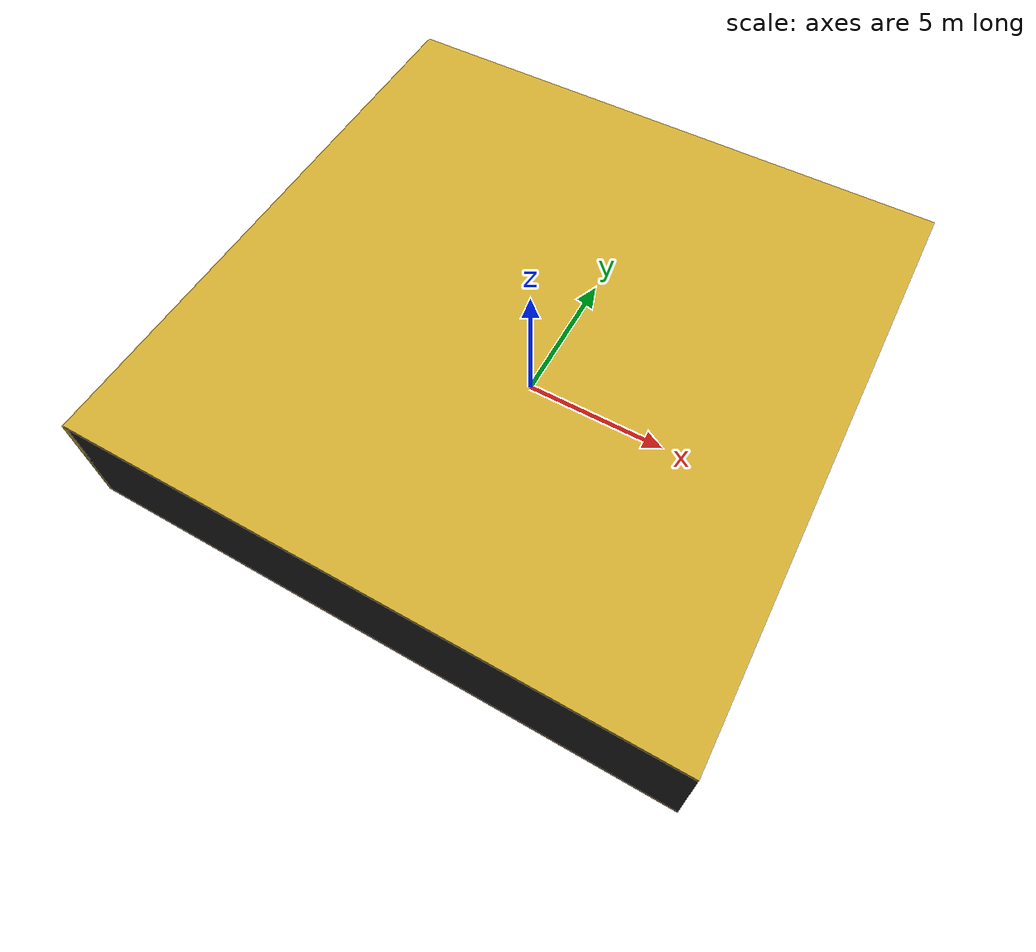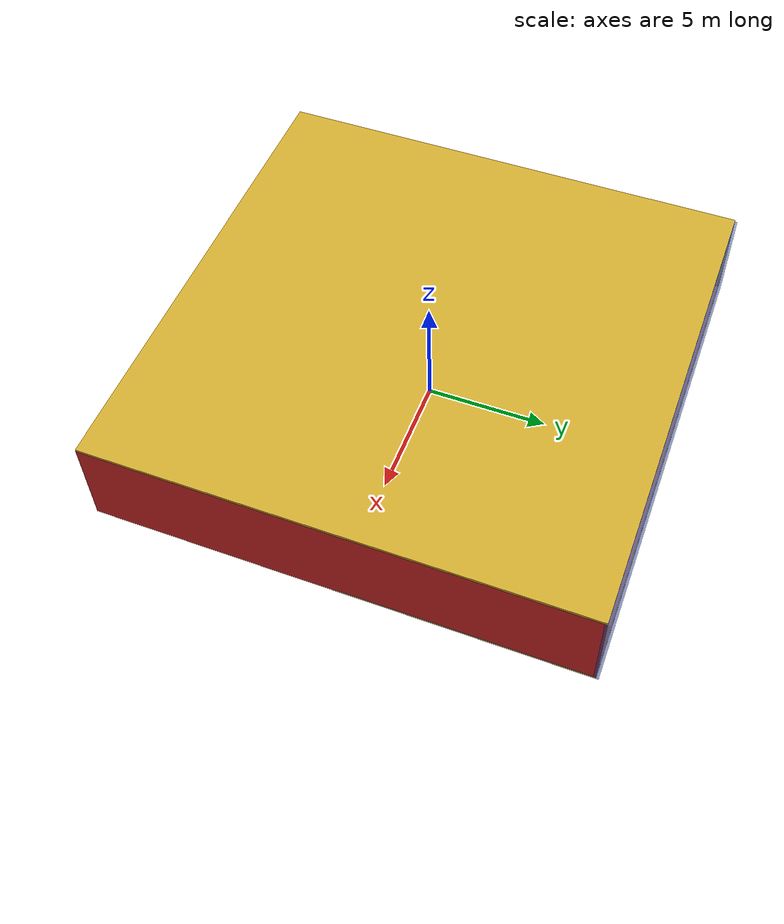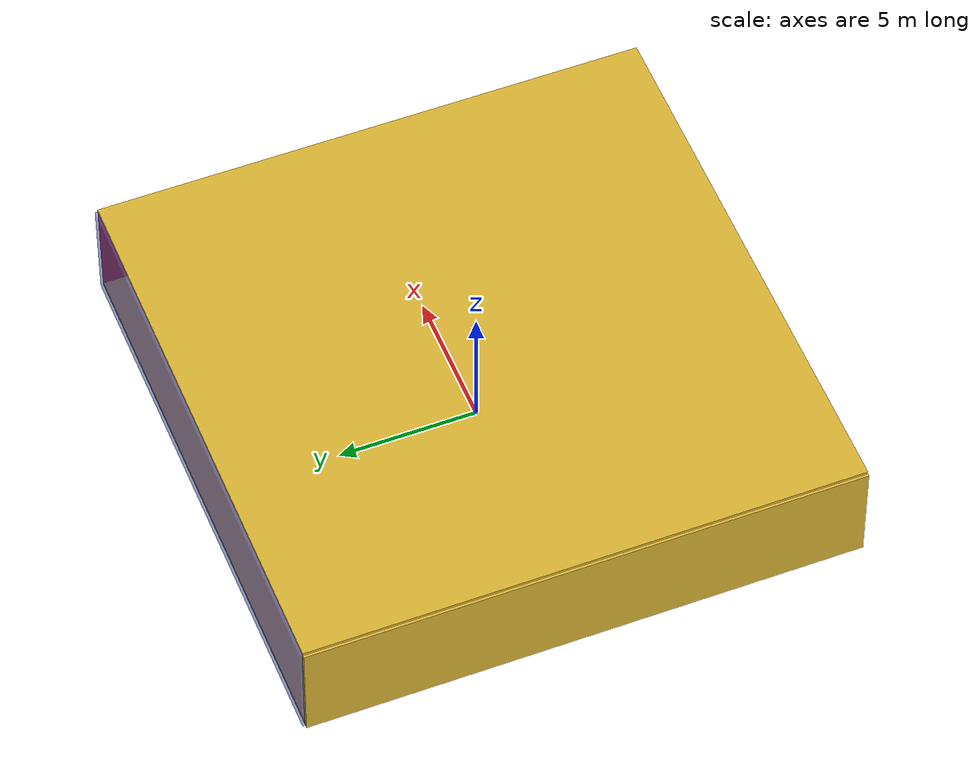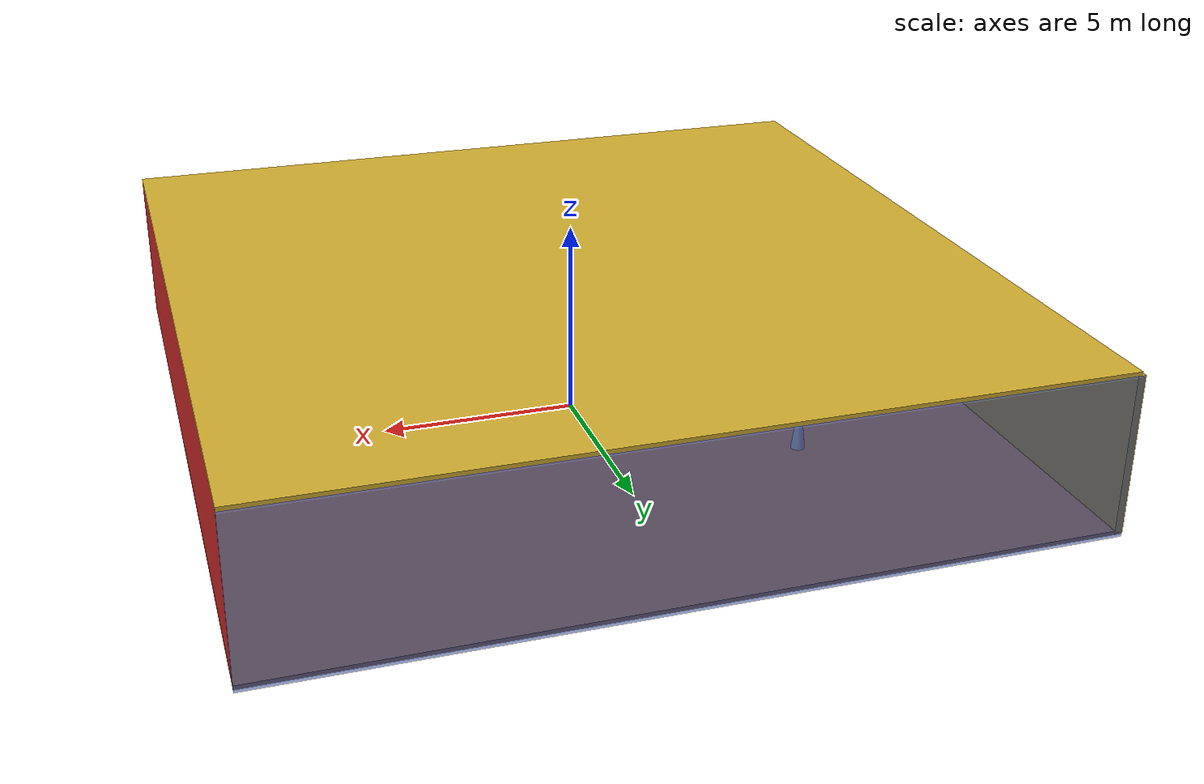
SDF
<sdf version="1.4">
 <world name="default">
  <physics type="ode">
   <max_step_size>0.001</max_step_size>
   <real_time_factor>1</real_time_factor>
   <real_time_update_rate>1000</real_time_update_rate>
   <gravity>0 0 -9.8</gravity>
  </physics>
  <scene><ambient>0.4 0.4 0.4 1</ambient><background>0.7 0.7 0.7 1</background><shadows>1</shadows></scene>
  <model name="Surrounding">
   <static>1</static>
   <link name="Ceiling">
    <collision name="Ceiling_Collision"><geometry><box><size>20 20 0.1</size></box></geometry></collision>
    <visual name="Ceiling_Visual">
     <geometry><box><size>20 20 0.1</size></box></geometry>
     <material>
      <script><uri>file://media/materials/scripts/gazebo.material</uri><name>Gazebo/Gold</name></script>
     </material>
    </visual>
    <pose>0 0 4.05 0 0 0</pose>
   </link>
   <link name="Wall_South">
    <collision name="Wall_South_Collision">
     <geometry><box><size>20 0 4</size></box></geometry>
     <pose>0 0 2 0 -0 0</pose>
    </collision>
    <visual name="Wall_South_Visual">
     <pose>0 0 2 0 -0 0</pose>
     <geometry><box><size>20 0 4</size></box></geometry>
     <material>
      <script><uri>file://media/materials/scripts/gazebo.material</uri><name>Gazebo/FlatBlack</name></script>
     </material>
    </visual>
    <velocity_decay><linear>0</linear><angular>0</angular></velocity_decay>
    <pose>0 -10 0 0 -0 0</pose>
   </link>
   <link name="Wall_East">
    <collision name="Wall_21_Collision">
     <geometry><box><size>20 0 4</size></box></geometry>
     <pose>0 0 2 0 -0 0</pose>
    </collision>
    <visual name="Wall_21_Visual">
     <pose>0 0 2 0 -0 0</pose>
     <geometry><box><size>20 0 4</size></box></geometry>
     <material>
      <script><uri>file://media/materials/scripts/gazebo.material</uri><name>Gazebo/RedGlow</name></script>
     </material>
    </visual>
    <velocity_decay><linear>0</linear><angular>0</angular></velocity_decay>
    <pose>10 0 0 0 -0 1.5708</pose>
   </link>
   <link name="Wall_North">
    <collision name="Wall_22_Collision">
     <geometry><box><size>20 0.2 4</size></box></geometry>
     <pose>0 0 2 0 -0 0</pose>
    </collision>
    <visual name="Wall_22_Visual">
     <pose>0 0 2 0 -0 0</pose>
     <geometry><box><size>20 0.2 4</size></box></geometry>
     <material>
      <script><uri>file://media/materials/scripts/gazebo.material</uri><name>Gazebo/BlueTransparent</name></script>
     </material>
    </visual>
    <velocity_decay><linear>0</linear><angular>0</angular></velocity_decay>
    <pose>0 10 0 0 -0 0</pose>
   </link>
   <link name="Wall_West">
    <collision name="Wall_23_Collision">
     <geometry><box><size>20 0.2 4</size></box></geometry>
     <pose>0 0 2 0 -0 0</pose>
    </collision>
    <visual name="Wall_23_Visual">
     <pose>0 0 2 0 -0 0</pose>
     <geometry><box><size>20 0.2 4</size></box></geometry>
     <material>
      <script><uri>file://media/materials/scripts/gazebo.material</uri><name>Gazebo/Gold</name></script>
     </material>
    </visual>
    <velocity_decay><linear>0</linear><angular>0</angular></velocity_decay>
    <pose>-10 0 0 0 0 -1.5708</pose>
   </link>
   <link name="Ground_link">
    <collision name="collision">
     <pose>0 0 .05 0 -0 0</pose>
     <geometry><box><size>20 20 0.1</size></box></geometry>
    </collision>
    <visual name="visual">
     <pose>0 0 .05 0 -0 0</pose>
     <geometry><box><size>20 20 0.1</size></box></geometry>
     <material>
      <script><uri>file://media/materials/scripts/gazebo.material</uri><name>Gazebo/Wood</name></script>
     </material>
    </visual>
   </link>
   <static>1</static>
  </model>
  <spherical_coordinates>
   <surface_model>EARTH_WGS84</surface_model>
   <latitude_deg>0</latitude_deg>
   <longitude_deg>0</longitude_deg>
   <elevation>0</elevation>
   <heading_deg>0</heading_deg>
  </spherical_coordinates>
  <light name="lightball_0" type="diffuse">
   <diffuse>0.8 0.8 0.8 1</diffuse>
   <specular>0.2 0.2 0.2 1</specular>
   <attenuation>
    <range>100</range>
    <constant>0.7</constant>
    <linear>0.01</linear>
    <quadratic>0.001</quadratic>
   </attenuation>
   <direction>-0.5 0.1 -0.9</direction>
   <pose>-9.17227417404 6.88987389294 1.11942965176 0 0 0</pose>
  </light>
  <light name="lightball_1" type="diffuse">
   <diffuse>0.8 0.8 0.8 1</diffuse>
   <specular>0.2 0.2 0.2 1</specular>
   <attenuation>
    <range>100</range>
    <constant>0.7</constant>
    <linear>0.01</linear>
    <quadratic>0.001</quadratic>
   </attenuation>
   <direction>-0.5 0.1 -0.9</direction>
   <pose>-6.75445681314 4.7566219145 2.7671008528 0 0 0</pose>
  </light>
  <light name="lightball_2" type="diffuse">
   <diffuse>0.8 0.8 0.8 1</diffuse>
   <specular>0.2 0.2 0.2 1</specular>
   <attenuation>
    <range>100</range>
    <constant>0.7</constant>
    <linear>0.01</linear>
    <quadratic>0.001</quadratic>
   </attenuation>
   <direction>-0.5 0.1 -0.9</direction>
   <pose>6.1900253056 -0.795940413021 1.10096648672 0 0 0</pose>
  </light>
  <light name="lightball_3" type="diffuse">
   <diffuse>0.8 0.8 0.8 1</diffuse>
   <specular>0.2 0.2 0.2 1</specular>
   <attenuation>
    <range>100</range>
    <constant>0.7</constant>
    <linear>0.01</linear>
    <quadratic>0.001</quadratic>
   </attenuation>
   <direction>-0.5 0.1 -0.9</direction>
   <pose>-7.60563651262 5.01789900174 3.75550189037 0 0 0</pose>
  </light>
  <include>
   <uri>model://robocup_3Dsim_goal</uri>
   <pose>-4.44632429156 -1.91149340078 0 0 0 2.57766574294</pose>
  </include>
  <include>
   <uri>model://construction_cone</uri>
   <pose>-4.68048443656 4.09792255952 0 0 0 2.27189654517</pose>
  </include>
  <include><uri>model://table</uri><pose>-0.918734483916 -7.07913963824 0 0 0 1.51177529741</pose></include>
  <include><uri>model://cabinet</uri><pose>-1.67371696948 1.77170681384 0 0 0 2.46507881293</pose></include>
  <include><uri>model://table</uri><pose>1.71999265502 -7.25118583614 0 0 0 3.13922521213</pose></include>
 </world>
</sdf>

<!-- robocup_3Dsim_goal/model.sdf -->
<sdf version="1.5">
  <model name="robocup_3d_goal">
    <static>true</static>
    <link name="left_post">
      <pose>0 1.05 0.45 0 0 0</pose>
      <collision name="collision">
        <geometry>
          <cylinder>
            <radius>0.05</radius>
            <length>0.9</length>
          </cylinder>
        </geometry>
      </collision>
      <visual name="visual">
        <geometry>
          <cylinder>
            <radius>0.05</radius>
            <length>0.9</length>
          </cylinder>
        </geometry>
        <material>
          <script>
            <uri>file://media/materials/scripts/gazebo.material</uri>
            <name>Gazebo/ZincYellow</name>
          </script>
        </material>
      </visual>
    </link>
    <link name="left_support_horiz_lower">
      <pose>0.30 1.05 0.01 0 0 0</pose>
      <collision name="collision">
        <geometry>
          <box>
            <size>0.50 0.02 0.02</size>
          </box>
        </geometry>
      </collision>
      <visual name="visual">
        <geometry>
          <box>
            <size>0.50 0.02 0.02</size>
          </box>
        </geometry>
        <material>
          <script>
            <uri>file://media/materials/scripts/gazebo.material</uri>
            <name>Gazebo/White</name>
          </script>
        </material>
      </visual>
    </link>
    <link name="left_support_horiz_upper">
      <pose>0.30 1.05 0.79 0 0 0</pose>
      <collision name="collision">
        <geometry>
          <box>
            <size>0.50 0.02 0.02</size>
          </box>
        </geometry>
      </collision>
      <visual name="visual">
        <geometry>
          <box>
            <size>0.50 0.02 0.02</size>
          </box>
        </geometry>
        <material>
          <script>
            <uri>file://media/materials/scripts/gazebo.material</uri>
            <name>Gazebo/White</name>
          </script>
        </material>
      </visual>
    </link>
    <link name="left_support_vertical">
      <pose>0.56 1.05 0.4 0 1.5708 0</pose>
      <collision name="collision">
        <geometry>
          <box>
            <size>0.80 0.02 0.02</size>
          </box>
        </geometry>
      </collision>
      <visual name="visual">
        <geometry>
          <box>
            <size>0.80 0.02 0.02</size>
          </box>
        </geometry>
        <material>
          <script>
            <uri>file://media/materials/scripts/gazebo.material</uri>
            <name>Gazebo/White</name>
          </script>
        </material>
      </visual>
    </link>
    <link name="right_support_horiz_lower">
      <pose>0.30 -1.05 0.01 0 0 0</pose>
      <collision name="collision">
        <geometry>
          <box>
            <size>0.50 0.02 0.02</size>
          </box>
        </geometry>
      </collision>
      <visual name="visual">
        <geometry>
          <box>
            <size>0.50 0.02 0.02</size>
          </box>
        </geometry>
        <material>
          <script>
            <uri>file://media/materials/scripts/gazebo.material</uri>
            <name>Gazebo/White</name>
          </script>
        </material>
      </visual>
    </link>
    <link name="right_support_horiz_upper">
      <pose>0.30 -1.05 0.79 0 0 0</pose>
      <collision name="collision">
        <geometry>
          <box>
            <size>0.50 0.02 0.02</size>
          </box>
        </geometry>
      </collision>
      <visual name="visual">
        <geometry>
          <box>
            <size>0.50 0.02 0.02</size>
          </box>
        </geometry>
        <material>
          <script>
            <uri>file://media/materials/scripts/gazebo.material</uri>
            <name>Gazebo/White</name>
          </script>
        </material>
      </visual>
    </link>
    <link name="right_support_vertical">
      <pose>0.56 -1.05 0.4 0 1.5708 0</pose>
      <collision name="collision">
        <geometry>
          <box>
            <size>0.80 0.02 0.02</size>
          </box>
        </geometry>
      </collision>
      <visual name="visual">
        <geometry>
          <box>
            <size>0.80 0.02 0.02</size>
          </box>
        </geometry>
        <material>
          <script>
            <uri>file://media/materials/scripts/gazebo.material</uri>
            <name>Gazebo/White</name>
          </script>
        </material>
      </visual>
    </link>
    <link name="center_support_horiz_lower">
      <pose>0.56 0 0.01 0 1.5708 0</pose>
      <collision name="collision">
        <geometry>
          <box>
            <size>0.02 2.08 0.02</size>
          </box>
        </geometry>
      </collision>
      <visual name="visual">
        <geometry>
          <box>
            <size>0.02 2.08 0.02</size>
          </box>
        </geometry>
        <material>
          <script>
            <uri>file://media/materials/scripts/gazebo.material</uri>
            <name>Gazebo/White</name>
          </script>
        </material>
      </visual>
    </link>
    <link name="center_support_horiz_upper">
      <pose>0.56 0 0.79 0 1.5708 0</pose>
      <collision name="collision">
        <geometry>
          <box>
            <size>0.02 2.08 0.02</size>
          </box>
        </geometry>
      </collision>
      <visual name="visual">
        <geometry>
          <box>
            <size>0.02 2.08 0.02</size>
          </box>
        </geometry>
        <material>
          <script>
            <uri>file://media/materials/scripts/gazebo.material</uri>
            <name>Gazebo/White</name>
          </script>
        </material>
      </visual>
    </link>
    <link name="right_post">
      <pose>0 -1.05 0.45 0 0 0</pose>
      <collision name="collision">
        <geometry>
          <cylinder>
            <radius>0.05</radius>
            <length>0.9</length>
          </cylinder>
        </geometry>
      </collision>
      <visual name="visual">
        <geometry>
          <cylinder>
            <radius>0.05</radius>
            <length>0.9</length>
          </cylinder>
        </geometry>
        <material>
          <script>
            <uri>file://media/materials/scripts/gazebo.material</uri>
            <name>Gazebo/ZincYellow</name>
          </script>
        </material>
      </visual>
    </link>
    <link name="crossbar">
      <pose>0 0 0.85 1.57 1.57 0</pose>
      <collision name="collision">
        <geometry>
          <cylinder>
            <radius>0.05</radius>
            <length>2.0</length>
          </cylinder>
        </geometry>
      </collision>
      <visual name="visual">
        <geometry>
          <cylinder>
            <radius>0.05</radius>
            <length>2.0</length>
          </cylinder>
        </geometry>
        <material>
          <script>
            <uri>file://media/materials/scripts/gazebo.material</uri>
            <name>Gazebo/ZincYellow</name>
          </script>
        </material>
      </visual>
    </link>
    <link name="center_net">
      <pose>0.56 0 0.40 0 0 0</pose>
      <collision name="collision">
        <geometry>
          <box>
            <size>0.01 2.1 0.80</size>
          </box>
        </geometry>
      </collision>
      <visual name="visual">
        <geometry>
          <box>
            <size>0.01 2.1 0.80</size>
          </box>
        </geometry>
        <material>
          <script>
            <uri>model://../model_source/models/robocup09_spl_field/materials/scripts/</uri>
            <uri>model://../model_source/models/robocup09_spl_field/materials/textures/</uri>
            <name>RoboCup/Net</name>
          </script>
        </material>
      </visual>
    </link>
    <link name="left_net">
      <pose>0.30 1.05 0.40 0 0 0</pose>
      <collision name="collision">
        <geometry>
          <box>
            <size>0.50 0.01 0.76</size>
          </box>
        </geometry>
      </collision>
      <visual name="visual">
        <geometry>
          <box>
            <size>0.50 0.01 0.76</size>
          </box>
        </geometry>
        <material>
          <script>
            <uri>model://../model_source/models/robocup09_spl_field/materials/scripts/</uri>
            <uri>model://../model_source/models/robocup09_spl_field/materials/textures/</uri>
            <name>RoboCup/Net</name>
          </script>
        </material>
      </visual>
    </link>
    <link name="right_net">
      <pose>0.30 -1.05 0.40 0 0 0</pose>
      <collision name="collision">
        <geometry>
          <box>
            <size>0.50 0.01 0.76</size>
          </box>
        </geometry>
      </collision>
      <visual name="visual">
        <geometry>
          <box>
            <size>0.50 0.01 0.76</size>
          </box>
        </geometry>
        <material>
          <script>
            <uri>model://../model_source/models/robocup09_spl_field/materials/scripts/</uri>
            <uri>model://../model_source/models/robocup09_spl_field/materials/textures/</uri>
            <name>RoboCup/Net</name>
          </script>
        </material>
      </visual>
    </link>
  </model>
</sdf>

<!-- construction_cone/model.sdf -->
<sdf version="1.5">
  <model name="Construction Cone">
    <link name="link">
      <collision name="collision">
        <geometry>
          <mesh>
            <scale>10 10 10</scale>
            <uri>file://isr-testbed/construction_cone/meshes/construction_cone.dae</uri>
          </mesh>
        </geometry>
      </collision>
      <visual name="visual">
        <geometry>
          <mesh>
            <scale>10 10 10</scale>
            <uri>file://isr-testbed/construction_cone/meshes/construction_cone.dae</uri>
          </mesh>
        </geometry>
      </visual>
    </link>
  </model>
</sdf>

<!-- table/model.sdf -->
<sdf version="1.5">
  <model name="table">
    <static>true</static>
    <link name="link">
      <collision name="surface">
        <pose>0 0 1.0 0 0 0</pose>
        <geometry>
          <box>
            <size>1.5 0.8 0.03</size>
          </box>
        </geometry>
        <surface>
          <friction>
            <ode>
              <mu>0.6</mu>
              <mu2>0.6</mu2>
            </ode>
          </friction>
        </surface>
      </collision>
      <visual name="visual1">
        <pose>0 0 1.0 0 0 0</pose>
        <geometry>
          <box>
            <size>1.5 0.8 0.03</size>
          </box>
        </geometry>
        <material>
          <script>
            <uri>model://media/materials/scripts/gazebo.material</uri>
            <name>Gazebo/Wood</name>
          </script>
        </material>
      </visual>
      <collision name="front_left_leg">
        <pose>0.68 0.38 0.5 0 0 0</pose>
        <geometry>
          <cylinder>
            <radius>0.02</radius>
            <length>1.0</length>
          </cylinder>
        </geometry>
      </collision>
      <visual name="front_left_leg">
        <pose>0.68 0.38 0.5 0 0 0</pose>
        <geometry>
          <cylinder>
            <radius>0.02</radius>
            <length>1.0</length>
          </cylinder>
        </geometry>
        <material>
          <script>
            <uri>model://media/materials/scripts/gazebo.material</uri>
            <name>Gazebo/Grey</name>
          </script>
        </material>
      </visual>
      <collision name="front_right_leg">
        <pose>0.68 -0.38 0.5 0 0 0</pose>
        <geometry>
          <cylinder>
            <radius>0.02</radius>
            <length>1.0</length>
          </cylinder>
        </geometry>
      </collision>
      <visual name="front_right_leg">
        <pose>0.68 -0.38 0.5 0 0 0</pose>
        <geometry>
          <cylinder>
            <radius>0.02</radius>
            <length>1.0</length>
          </cylinder>
        </geometry>
        <material>
          <script>
            <uri>model://media/materials/scripts/gazebo.material</uri>
            <name>Gazebo/Grey</name>
          </script>
        </material>
      </visual>
      <collision name="back_right_leg">
        <pose>-0.68 -0.38 0.5 0 0 0</pose>
        <geometry>
          <cylinder>
            <radius>0.02</radius>
            <length>1.0</length>
          </cylinder>
        </geometry>
      </collision>
      <visual name="back_right_leg">
        <pose>-0.68 -0.38 0.5 0 0 0</pose>
        <geometry>
          <cylinder>
            <radius>0.02</radius>
            <length>1.0</length>
          </cylinder>
        </geometry>
        <material>
          <script>
            <uri>model://media/materials/scripts/gazebo.material</uri>
            <name>Gazebo/Grey</name>
          </script>
        </material>
      </visual>
      <collision name="back_left_leg">
        <pose>-0.68 0.38 0.5 0 0 0</pose>
        <geometry>
          <cylinder>
            <radius>0.02</radius>
            <length>1.0</length>
          </cylinder>
        </geometry>
      </collision>
      <visual name="back_left_leg">
        <pose>-0.68 0.38 0.5 0 0 0</pose>
        <geometry>
          <cylinder>
            <radius>0.02</radius>
            <length>1.0</length>
          </cylinder>
        </geometry>
        <material>
          <script>
            <uri>model://media/materials/scripts/gazebo.material</uri>
            <name>Gazebo/Grey</name>
          </script>
        </material>
      </visual>
    </link>
  </model>
</sdf>

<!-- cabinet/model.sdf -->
<sdf version="1.5">
  <model name="cabinet">
    <static>true</static>
    <link name="cabinet_bottom_plate">
      <inertial>
        <pose>0 0 -1 0 0 0</pose>
        <inertia>
          <ixx>2.050000</ixx>
          <ixy>0</ixy>
          <ixz>0</ixz>
          <iyy>2.050000</iyy>
          <iyz>0</iyz>
          <izz>2.050000</izz>
        </inertia>
        <mass>25.000000</mass>
      </inertial>
      <collision name="cabinet_bottom_plate_geom">
        <pose>0 0 0.010000 0 0 0</pose>
        <geometry>
          <box>
            <size>0.450000 0.450000 0.020000</size>
          </box>
        </geometry>
      </collision>
      <visual name="cabinet_bottom_plate_geom_visual">
        <pose>0 0 0.010000 0 0 0</pose>
        <geometry>
          <box>
            <size>0.450000 0.450000 0.020000</size>
          </box>
        </geometry>
        <material>
          <script>
            <uri>model://media/materials/scripts/gazebo.material</uri>
            <name>Gazebo/Wood</name>
          </script>
        </material>
      </visual>
      <collision name="cabinet_bottom_plate_geom_cabinet_back_plate">
        <pose>0.235000 0 0.510000 0 0 0</pose>
        <geometry>
          <box>
            <size>0.020000 0.450000 1.020000</size>
          </box>
        </geometry>
      </collision>
      <visual name="cabinet_bottom_plate_geom_cabinet_back_plate_visual">
        <pose>0.235000 0 0.510000 0 0 0</pose>
        <geometry>
          <box>
            <size>0.020000 0.450000 1.020000</size>
          </box>
        </geometry>
        <material>
          <script>
            <uri>model://media/materials/scripts/gazebo.material</uri>
            <name>Gazebo/Wood</name>
          </script>
        </material>
      </visual>
      <collision name="cabinet_bottom_plate_geom_cabinet_left_plate">
        <pose>0 0.235000 0.510000 0 0 0</pose>
        <geometry>
          <box>
            <size>0.450000 0.020000 1.020000</size>
          </box>
        </geometry>
      </collision>
      <visual name="cabinet_bottom_plate_geom_cabinet_left_plate_visual">
        <pose>0 0.235000 0.510000 0 0 0</pose>
        <geometry>
          <box>
            <size>0.450000 0.020000 1.020000</size>
          </box>
        </geometry>
        <material>
          <script>
            <uri>model://media/materials/scripts/gazebo.material</uri>
            <name>Gazebo/Wood</name>
          </script>
        </material>
      </visual>
      <collision name="cabinet_bottom_plate_geom_cabinet_middle_plate">
        <pose>0 0 0.510000 0 0 0</pose>
        <geometry>
          <box>
            <size>0.450000 0.450000 0.020000</size>
          </box>
        </geometry>
      </collision>
      <visual name="cabinet_bottom_plate_geom_cabinet_middle_plate_visual">
        <pose>0 0 0.510000 0 0 0</pose>
        <geometry>
          <box>
            <size>0.450000 0.450000 0.020000</size>
          </box>
        </geometry>
        <material>
          <script>
            <uri>model://media/materials/scripts/gazebo.material</uri>
            <name>Gazebo/Wood</name>
          </script>
        </material>
      </visual>
      <collision name="cabinet_bottom_plate_geom_cabinet_right_plate">
        <pose>0 -0.235000 0.510000 0 0 0</pose>
        <geometry>
          <box>
            <size>0.450000 0.020000 1.020000</size>
          </box>
        </geometry>
      </collision>
      <visual name="cabinet_bottom_plate_geom_cabinet_right_plate_visual">
        <pose>0 -0.235000 0.510000 0 0 0</pose>
        <geometry>
          <box>
            <size>0.450000 0.020000 1.020000</size>
          </box>
        </geometry>
        <material>
          <script>
            <uri>model://media/materials/scripts/gazebo.material</uri>
            <name>Gazebo/Wood</name>
          </script>
        </material>
      </visual>
      <collision name="cabinet_bottom_plate_geom_cabinet_top_plate">
        <pose>0 0 1.010000 0 0 0</pose>
        <geometry>
          <box>
            <size>0.450000 0.450000 0.020000</size>
          </box>
        </geometry>
      </collision>
      <visual name="cabinet_bottom_plate_geom_cabinet_top_plate_visual">
        <pose>0 0 1.010000 0 0 0</pose>
        <geometry>
          <box>
            <size>0.450000 0.450000 0.020000</size>
          </box>
        </geometry>
        <material>
          <script>
            <uri>model://media/materials/scripts/gazebo.material</uri>
            <name>Gazebo/Wood</name>
          </script>
        </material>
      </visual>
    </link>
  </model>
</sdf>
